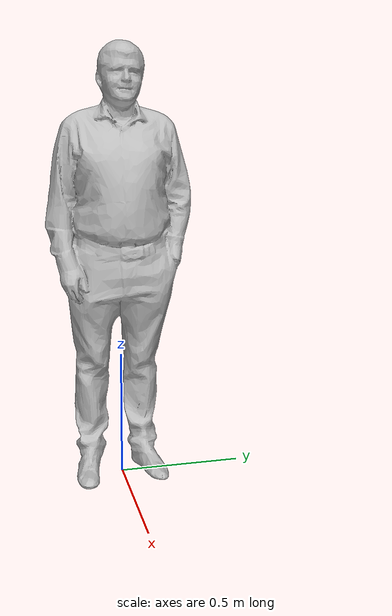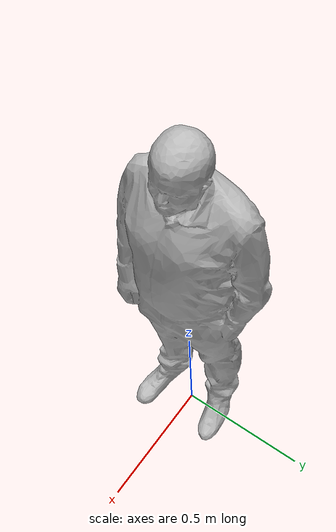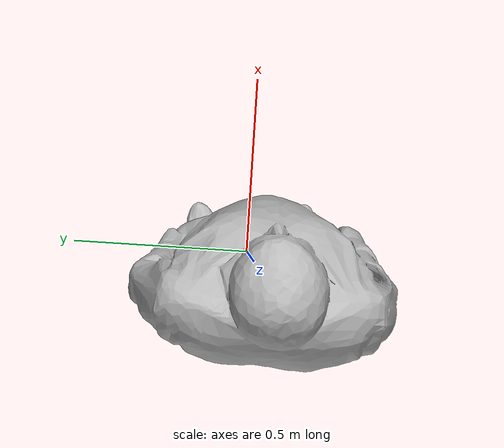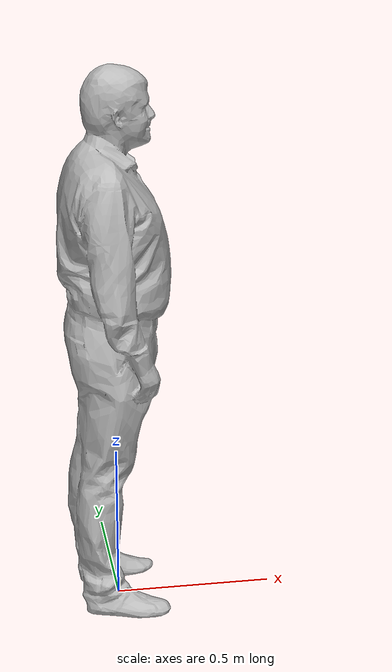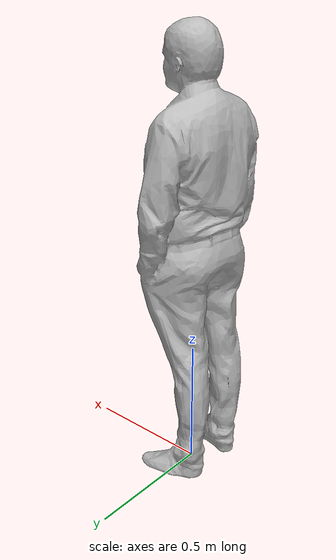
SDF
<sdf version='1.4'>
  <!-- Draw Model -->
  <model name='human'>
    <static>true</static>
    <link name="human">
      <collision name="collision">
        <geometry>
          <mesh>
            <uri>model://human/meshes/STL/human.stl</uri>
          </mesh>
        </geometry>
      </collision>

      <visual name="visual">
        <geometry>
          <mesh>
            <uri>model://human/meshes/DAE/human.dae</uri>
          </mesh>
        </geometry>
      </visual>
    </link>
  </model>
</sdf>
